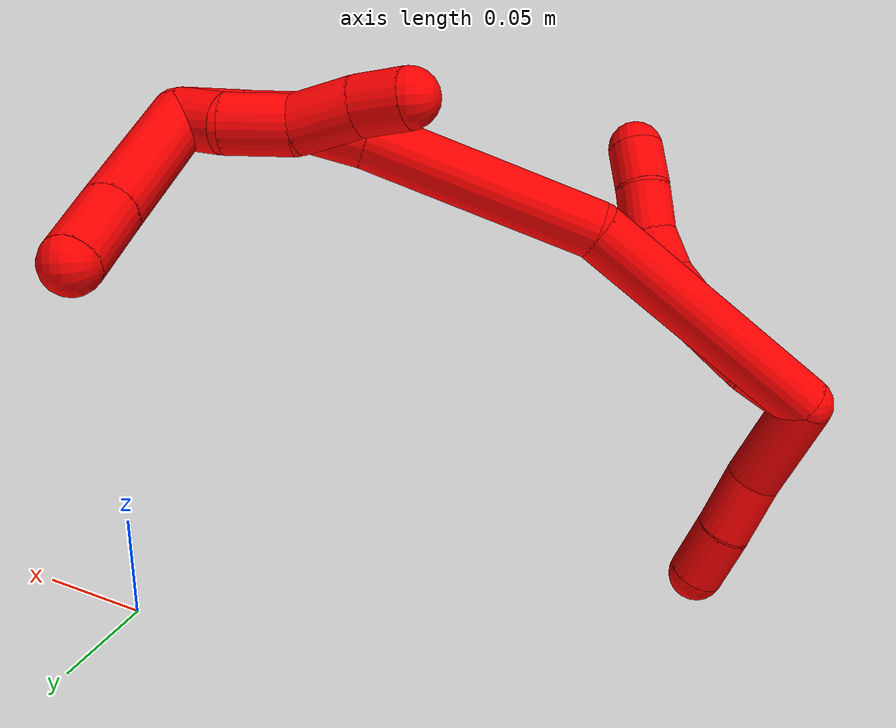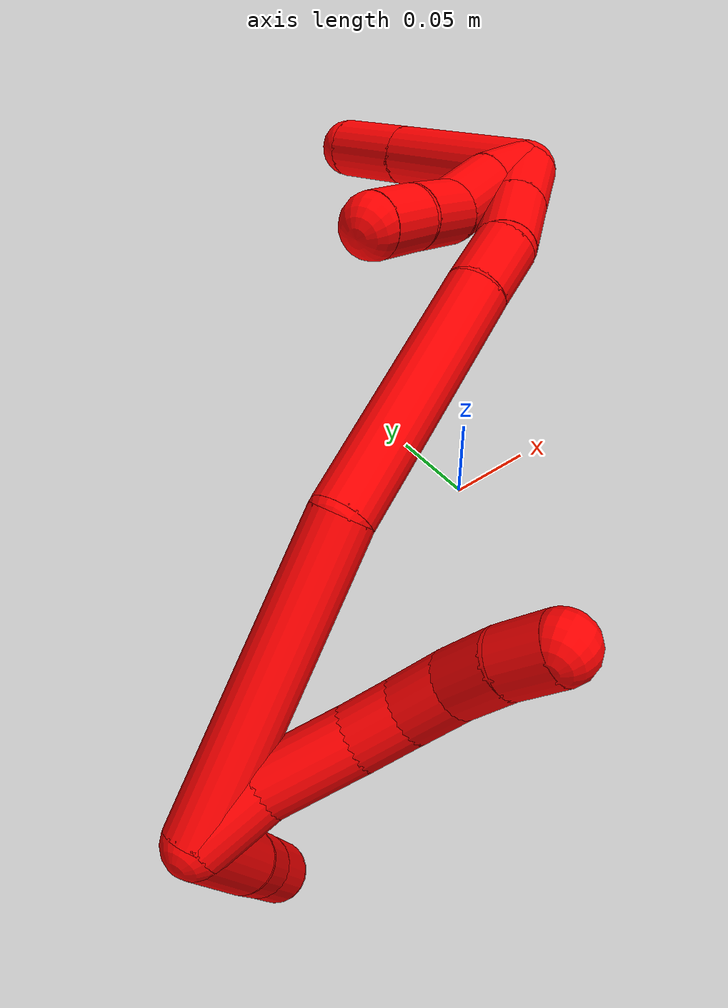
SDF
<sdf version="1.7">
 <world name="default">
  <model name="photoneo_s_sensor">
   <static>1</static>
   <pose>0 0 2 1.57079 1.57079 3.14159</pose>
   <link name="link">
    <inertial><mass>0.1</mass></inertial>
    <sensor name="sensor" type="depth">
     <update_rate>30</update_rate>
     <camera>
      <horizontal_fov>1.22</horizontal_fov>
      <image><width>1920</width><height>1200</height><format>B8G8R8</format></image>
      <clip><near>0.1</near><far>4</far></clip>
      <depth_camera><output>points</output></depth_camera>
     </camera>
     <plugin name="camera_plugin" filename="libgazebo_ros_depth_camera.so">
      <baseline>0.2</baseline>
      <alwaysOn>1</alwaysOn>
      <updateRate>0.0</updateRate>
      <cameraName>camera_ir</cameraName>
      <imageTopicName>/camera/color/image_raw</imageTopicName>
      <cameraInfoTopicName>/camera/color/camera_info</cameraInfoTopicName>
      <depthImageTopicName>/camera/depth/image_raw</depthImageTopicName>
      <depthImageCameraInfoTopicName>/camera/depth/camera_info</depthImageCameraInfoTopicName>
      <pointCloudTopicName>/camera/depth/points</pointCloudTopicName>
      <frameName>fr_optical</frameName>
      <pointCloudCutoff>0.1</pointCloudCutoff>
      <pointCloudCutoffMax>2.0</pointCloudCutoffMax>
      <distortionK1>0</distortionK1>
      <distortionK2>0</distortionK2>
      <distortionK3>0</distortionK3>
      <distortionT1>0</distortionT1>
      <distortionT2>0</distortionT2>
      <CxPrime>0</CxPrime>
      <Cx>0</Cx>
      <Cy>0</Cy>
      <focalLength>0</focalLength>
      <hackBaseline>0</hackBaseline>
     </plugin>
    </sensor>
   </link>
  </model>
  <model name="bin">
   <static>1</static>
   <link name="bottom">
    <collision name="collision-bottom">
     <pose>0 0 -0.01 0 -0 0</pose>
     <geometry><box><size>0.8 0.6 0.02</size></box></geometry>
     <surface>
      <friction><ode><mu>100</mu><mu2>100</mu2></ode></friction>
      <contact><collide_bitmask>65535</collide_bitmask></contact>
     </surface>
    </collision>
   </link>
   <link name="west_wall">
    <collision name="collision-west_wall">
     <pose>-0.41 0 0.1 0 -0 0</pose>
     <geometry><box><size>0.02 0.6 0.2</size></box></geometry>
     <surface>
      <friction><ode><mu>100</mu><mu2>100</mu2></ode></friction>
      <contact><collide_bitmask>65535</collide_bitmask></contact>
     </surface>
    </collision>
   </link>
   <link name="east_wall">
    <collision name="collision-east_wall">
     <pose>0.41 0 0.1 0 -0 0</pose>
     <geometry><box><size>0.02 0.6 0.2</size></box></geometry>
     <surface>
      <friction><ode><mu>100</mu><mu2>100</mu2></ode></friction>
      <contact><collide_bitmask>65535</collide_bitmask></contact>
     </surface>
    </collision>
   </link>
   <link name="south_wall">
    <collision name="collision-south_wall">
     <pose>0 -0.31 0.1 0 -0 0</pose>
     <geometry><box><size>0.8 0.02 0.2</size></box></geometry>
     <surface>
      <friction><ode><mu>100</mu><mu2>100</mu2></ode></friction>
      <contact><collide_bitmask>65535</collide_bitmask></contact>
     </surface>
    </collision>
   </link>
   <link name="north_wall">
    <collision name="collision-north_wall">
     <pose>0 0.31 0.1 0 -0 0</pose>
     <geometry><box><size>0.8 0.02 0.2</size></box></geometry>
     <surface>
      <friction><ode><mu>100</mu><mu2>100</mu2></ode></friction>
      <contact><collide_bitmask>65535</collide_bitmask></contact>
     </surface>
    </collision>
   </link>
  </model>
  <model name="2">
   <static>0</static>
   <link name="2">
    <collision name="collision-cylinder-e_1_2_8">
     <pose>0.008466 -0.00306 -0.011084 2.87226 0.634687 2.3591</pose>
     <geometry><cylinder><radius>0.0125</radius><length>0.028558</length></cylinder></geometry>
     <surface>
      <friction><ode><mu>1.16</mu><mu2>1.16</mu2><slip1>0</slip1><slip2>0</slip2></ode></friction>
      <contact><ode><kp>1e+06</kp><kd>1</kd><max_vel>0</max_vel><min_depth>0.001</min_depth></ode></contact>
     </surface>
    </collision>
    <visual name="visual-cylinder-e_1_2_8">
     <pose>0.008466 -0.00306 -0.011084 2.87226 0.634687 2.3591</pose>
     <geometry><cylinder><radius>0.0125</radius><length>0.028558</length></cylinder></geometry>
     <material><ambient>1 0 0 1</ambient></material>
    </visual>
    <collision name="collision-cylinder-e_2_8_9">
     <pose>0.028714 -0.013458 -0.033641 2.57252 0.713131 1.81031</pose>
     <geometry><cylinder><radius>0.0125</radius><length>0.036018</length></cylinder></geometry>
     <surface>
      <friction><ode><mu>1.16</mu><mu2>1.16</mu2><slip1>0</slip1><slip2>0</slip2></ode></friction>
      <contact><ode><kp>1e+06</kp><kd>1</kd><max_vel>0</max_vel><min_depth>0.001</min_depth></ode></contact>
     </surface>
    </collision>
    <visual name="visual-cylinder-e_2_8_9">
     <pose>0.028714 -0.013458 -0.033641 2.57252 0.713131 1.81031</pose>
     <geometry><cylinder><radius>0.0125</radius><length>0.036018</length></cylinder></geometry>
     <material><ambient>1 0 0 1</ambient></material>
    </visual>
    <collision name="collision-cylinder-e_3_9_10">
     <pose>0.048427 -0.02454 -0.050687 2.55013 0.868503 1.97914</pose>
     <geometry><cylinder><radius>0.0125</radius><length>0.020781</length></cylinder></geometry>
     <surface>
      <friction><ode><mu>1.16</mu><mu2>1.16</mu2><slip1>0</slip1><slip2>0</slip2></ode></friction>
      <contact><ode><kp>1e+06</kp><kd>1</kd><max_vel>0</max_vel><min_depth>0.001</min_depth></ode></contact>
     </surface>
    </collision>
    <visual name="visual-cylinder-e_3_9_10">
     <pose>0.048427 -0.02454 -0.050687 2.55013 0.868503 1.97914</pose>
     <geometry><cylinder><radius>0.0125</radius><length>0.020781</length></cylinder></geometry>
     <material><ambient>1 0 0 1</ambient></material>
    </visual>
    <collision name="collision-cylinder-e_4_10_11">
     <pose>0.065874 -0.031363 -0.059723 2.41479 1.11745 2.0486</pose>
     <geometry><cylinder><radius>0.0125</radius><length>0.021169</length></cylinder></geometry>
     <surface>
      <friction><ode><mu>1.16</mu><mu2>1.16</mu2><slip1>0</slip1><slip2>0</slip2></ode></friction>
      <contact><ode><kp>1e+06</kp><kd>1</kd><max_vel>0</max_vel><min_depth>0.001</min_depth></ode></contact>
     </surface>
    </collision>
    <visual name="visual-cylinder-e_4_10_11">
     <pose>0.065874 -0.031363 -0.059723 2.41479 1.11745 2.0486</pose>
     <geometry><cylinder><radius>0.0125</radius><length>0.021169</length></cylinder></geometry>
     <material><ambient>1 0 0 1</ambient></material>
    </visual>
    <collision name="collision-cylinder-e_5_11_12">
     <pose>0.086238 -0.037568 -0.064199 1.88404 1.2768 1.59097</pose>
     <geometry><cylinder><radius>0.0125</radius><length>0.022669</length></cylinder></geometry>
     <surface>
      <friction><ode><mu>1.16</mu><mu2>1.16</mu2><slip1>0</slip1><slip2>0</slip2></ode></friction>
      <contact><ode><kp>1e+06</kp><kd>1</kd><max_vel>0</max_vel><min_depth>0.001</min_depth></ode></contact>
     </surface>
    </collision>
    <visual name="visual-cylinder-e_5_11_12">
     <pose>0.086238 -0.037568 -0.064199 1.88404 1.2768 1.59097</pose>
     <geometry><cylinder><radius>0.0125</radius><length>0.022669</length></cylinder></geometry>
     <material><ambient>1 0 0 1</ambient></material>
    </visual>
    <collision name="collision-cylinder-e_6_12_6">
     <pose>0.106475 -0.044985 -0.066493 1.86088 1.12561 1.40513</pose>
     <geometry><cylinder><radius>0.0125</radius><length>0.020805</length></cylinder></geometry>
     <surface>
      <friction><ode><mu>1.16</mu><mu2>1.16</mu2><slip1>0</slip1><slip2>0</slip2></ode></friction>
      <contact><ode><kp>1e+06</kp><kd>1</kd><max_vel>0</max_vel><min_depth>0.001</min_depth></ode></contact>
     </surface>
    </collision>
    <visual name="visual-cylinder-e_6_12_6">
     <pose>0.106475 -0.044985 -0.066493 1.86088 1.12561 1.40513</pose>
     <geometry><cylinder><radius>0.0125</radius><length>0.020805</length></cylinder></geometry>
     <material><ambient>1 0 0 1</ambient></material>
    </visual>
    <collision name="collision-cylinder-e_1_2_13">
     <pose>-0.017166 -0.009365 -0.010072 2.39252 -0.895343 -1.76961</pose>
     <geometry><cylinder><radius>0.0125</radius><length>0.043993</length></cylinder></geometry>
     <surface>
      <friction><ode><mu>1.16</mu><mu2>1.16</mu2><slip1>0</slip1><slip2>0</slip2></ode></friction>
      <contact><ode><kp>1e+06</kp><kd>1</kd><max_vel>0</max_vel><min_depth>0.001</min_depth></ode></contact>
     </surface>
    </collision>
    <visual name="visual-cylinder-e_1_2_13">
     <pose>-0.017166 -0.009365 -0.010072 2.39252 -0.895343 -1.76961</pose>
     <geometry><cylinder><radius>0.0125</radius><length>0.043993</length></cylinder></geometry>
     <material><ambient>1 0 0 1</ambient></material>
    </visual>
    <collision name="collision-cylinder-e_2_13_14">
     <pose>-0.046694 -0.022829 -0.026637 2.57857 -1.01494 -2.18241</pose>
     <geometry><cylinder><radius>0.0125</radius><length>0.029104</length></cylinder></geometry>
     <surface>
      <friction><ode><mu>1.16</mu><mu2>1.16</mu2><slip1>0</slip1><slip2>0</slip2></ode></friction>
      <contact><ode><kp>1e+06</kp><kd>1</kd><max_vel>0</max_vel><min_depth>0.001</min_depth></ode></contact>
     </surface>
    </collision>
    <visual name="visual-cylinder-e_2_13_14">
     <pose>-0.046694 -0.022829 -0.026637 2.57857 -1.01494 -2.18241</pose>
     <geometry><cylinder><radius>0.0125</radius><length>0.029104</length></cylinder></geometry>
     <material><ambient>1 0 0 1</ambient></material>
    </visual>
    <collision name="collision-cylinder-e_3_14_5">
     <pose>-0.070028 -0.031766 -0.039225 2.47057 -0.95396 -1.95443</pose>
     <geometry><cylinder><radius>0.0125</radius><length>0.026903</length></cylinder></geometry>
     <surface>
      <friction><ode><mu>1.16</mu><mu2>1.16</mu2><slip1>0</slip1><slip2>0</slip2></ode></friction>
      <contact><ode><kp>1e+06</kp><kd>1</kd><max_vel>0</max_vel><min_depth>0.001</min_depth></ode></contact>
     </surface>
    </collision>
    <visual name="visual-cylinder-e_3_14_5">
     <pose>-0.070028 -0.031766 -0.039225 2.47057 -0.95396 -1.95443</pose>
     <geometry><cylinder><radius>0.0125</radius><length>0.026903</length></cylinder></geometry>
     <material><ambient>1 0 0 1</ambient></material>
    </visual>
    <collision name="collision-cylinder-e_1_2_15">
     <pose>0.038932 0.014586 -0.04383 -2.82034 0.700303 -2.30647</pose>
     <geometry><cylinder><radius>0.0125</radius><length>0.120821</length></cylinder></geometry>
     <surface>
      <friction><ode><mu>1.16</mu><mu2>1.16</mu2><slip1>0</slip1><slip2>0</slip2></ode></friction>
      <contact><ode><kp>1e+06</kp><kd>1</kd><max_vel>0</max_vel><min_depth>0.001</min_depth></ode></contact>
     </surface>
    </collision>
    <visual name="visual-cylinder-e_1_2_15">
     <pose>0.038932 0.014586 -0.04383 -2.82034 0.700303 -2.30647</pose>
     <geometry><cylinder><radius>0.0125</radius><length>0.120821</length></cylinder></geometry>
     <material><ambient>1 0 0 1</ambient></material>
    </visual>
    <collision name="collision-cylinder-e_2_15_16">
     <pose>0.098148 0.035934 -0.134046 -2.99682 0.408398 -2.46798</pose>
     <geometry><cylinder><radius>0.0125</radius><length>0.102155</length></cylinder></geometry>
     <surface>
      <friction><ode><mu>1.16</mu><mu2>1.16</mu2><slip1>0</slip1><slip2>0</slip2></ode></friction>
      <contact><ode><kp>1e+06</kp><kd>1</kd><max_vel>0</max_vel><min_depth>0.001</min_depth></ode></contact>
     </surface>
    </collision>
    <visual name="visual-cylinder-e_2_15_16">
     <pose>0.098148 0.035934 -0.134046 -2.99682 0.408398 -2.46798</pose>
     <geometry><cylinder><radius>0.0125</radius><length>0.102155</length></cylinder></geometry>
     <material><ambient>1 0 0 1</ambient></material>
    </visual>
    <collision name="collision-cylinder-e_3_16_17">
     <pose>0.122216 0.044005 -0.192268 -3.03145 0.30759 -2.45826</pose>
     <geometry><cylinder><radius>0.0125</radius><length>0.02499</length></cylinder></geometry>
     <surface>
      <friction><ode><mu>1.16</mu><mu2>1.16</mu2><slip1>0</slip1><slip2>0</slip2></ode></friction>
      <contact><ode><kp>1e+06</kp><kd>1</kd><max_vel>0</max_vel><min_depth>0.001</min_depth></ode></contact>
     </surface>
    </collision>
    <visual name="visual-cylinder-e_3_16_17">
     <pose>0.122216 0.044005 -0.192268 -3.03145 0.30759 -2.45826</pose>
     <geometry><cylinder><radius>0.0125</radius><length>0.02499</length></cylinder></geometry>
     <material><ambient>1 0 0 1</ambient></material>
    </visual>
    <collision name="collision-cylinder-e_4_17_18">
     <pose>0.126584 0.049346 -0.21693 -2.837 0.043464 -0.28135</pose>
     <geometry><cylinder><radius>0.0125</radius><length>0.026913</length></cylinder></geometry>
     <surface>
      <friction><ode><mu>1.16</mu><mu2>1.16</mu2><slip1>0</slip1><slip2>0</slip2></ode></friction>
      <contact><ode><kp>1e+06</kp><kd>1</kd><max_vel>0</max_vel><min_depth>0.001</min_depth></ode></contact>
     </surface>
    </collision>
    <visual name="visual-cylinder-e_4_17_18">
     <pose>0.126584 0.049346 -0.21693 -2.837 0.043464 -0.28135</pose>
     <geometry><cylinder><radius>0.0125</radius><length>0.026913</length></cylinder></geometry>
     <material><ambient>1 0 0 1</ambient></material>
    </visual>
    <collision name="collision-cylinder-e_5_18_1">
     <pose>0.127943 0.057049 -0.241742 -2.84446 0.061696 -0.406643</pose>
     <geometry><cylinder><radius>0.0125</radius><length>0.025121</length></cylinder></geometry>
     <surface>
      <friction><ode><mu>1.16</mu><mu2>1.16</mu2><slip1>0</slip1><slip2>0</slip2></ode></friction>
      <contact><ode><kp>1e+06</kp><kd>1</kd><max_vel>0</max_vel><min_depth>0.001</min_depth></ode></contact>
     </surface>
    </collision>
    <visual name="visual-cylinder-e_5_18_1">
     <pose>0.127943 0.057049 -0.241742 -2.84446 0.061696 -0.406643</pose>
     <geometry><cylinder><radius>0.0125</radius><length>0.025121</length></cylinder></geometry>
     <material><ambient>1 0 0 1</ambient></material>
    </visual>
    <collision name="collision-cylinder-e_1_1_19">
     <pose>0.126815 0.064763 -0.243811 -0.387136 -0.175808 0.034548</pose>
     <geometry><cylinder><radius>0.0125</radius><length>0.021756</length></cylinder></geometry>
     <surface>
      <friction><ode><mu>1.16</mu><mu2>1.16</mu2><slip1>0</slip1><slip2>0</slip2></ode></friction>
      <contact><ode><kp>1e+06</kp><kd>1</kd><max_vel>0</max_vel><min_depth>0.001</min_depth></ode></contact>
     </surface>
    </collision>
    <visual name="visual-cylinder-e_1_1_19">
     <pose>0.126815 0.064763 -0.243811 -0.387136 -0.175808 0.034548</pose>
     <geometry><cylinder><radius>0.0125</radius><length>0.021756</length></cylinder></geometry>
     <material><ambient>1 0 0 1</ambient></material>
    </visual>
    <collision name="collision-cylinder-e_2_19_20">
     <pose>0.123893 0.070022 -0.219285 -0.083041 -0.069422 0.002885</pose>
     <geometry><cylinder><radius>0.0125</radius><length>0.029389</length></cylinder></geometry>
     <surface>
      <friction><ode><mu>1.16</mu><mu2>1.16</mu2><slip1>0</slip1><slip2>0</slip2></ode></friction>
      <contact><ode><kp>1e+06</kp><kd>1</kd><max_vel>0</max_vel><min_depth>0.001</min_depth></ode></contact>
     </surface>
    </collision>
    <visual name="visual-cylinder-e_2_19_20">
     <pose>0.123893 0.070022 -0.219285 -0.083041 -0.069422 0.002885</pose>
     <geometry><cylinder><radius>0.0125</radius><length>0.029389</length></cylinder></geometry>
     <material><ambient>1 0 0 1</ambient></material>
    </visual>
    <collision name="collision-cylinder-e_3_20_21">
     <pose>0.125705 0.074296 -0.191617 -0.230042 0.208054 -0.024123</pose>
     <geometry><cylinder><radius>0.0125</radius><length>0.027416</length></cylinder></geometry>
     <surface>
      <friction><ode><mu>1.16</mu><mu2>1.16</mu2><slip1>0</slip1><slip2>0</slip2></ode></friction>
      <contact><ode><kp>1e+06</kp><kd>1</kd><max_vel>0</max_vel><min_depth>0.001</min_depth></ode></contact>
     </surface>
    </collision>
    <visual name="visual-cylinder-e_3_20_21">
     <pose>0.125705 0.074296 -0.191617 -0.230042 0.208054 -0.024123</pose>
     <geometry><cylinder><radius>0.0125</radius><length>0.027416</length></cylinder></geometry>
     <material><ambient>1 0 0 1</ambient></material>
    </visual>
    <collision name="collision-cylinder-e_4_21_4">
     <pose>0.1293 0.080557 -0.168357 -0.304173 0.071285 -0.01093</pose>
     <geometry><cylinder><radius>0.0125</radius><length>0.021439</length></cylinder></geometry>
     <surface>
      <friction><ode><mu>1.16</mu><mu2>1.16</mu2><slip1>0</slip1><slip2>0</slip2></ode></friction>
      <contact><ode><kp>1e+06</kp><kd>1</kd><max_vel>0</max_vel><min_depth>0.001</min_depth></ode></contact>
     </surface>
    </collision>
    <visual name="visual-cylinder-e_4_21_4">
     <pose>0.1293 0.080557 -0.168357 -0.304173 0.071285 -0.01093</pose>
     <geometry><cylinder><radius>0.0125</radius><length>0.021439</length></cylinder></geometry>
     <material><ambient>1 0 0 1</ambient></material>
    </visual>
    <collision name="collision-cylinder-e_1_1_22">
     <pose>0.109684 0.087001 -0.26128 -1.85058 -0.608067 0.789474</pose>
     <geometry><cylinder><radius>0.0125</radius><length>0.066635</length></cylinder></geometry>
     <surface>
      <friction><ode><mu>1.16</mu><mu2>1.16</mu2><slip1>0</slip1><slip2>0</slip2></ode></friction>
      <contact><ode><kp>1e+06</kp><kd>1</kd><max_vel>0</max_vel><min_depth>0.001</min_depth></ode></contact>
     </surface>
    </collision>
    <visual name="visual-cylinder-e_1_1_22">
     <pose>0.109684 0.087001 -0.26128 -1.85058 -0.608067 0.789474</pose>
     <geometry><cylinder><radius>0.0125</radius><length>0.066635</length></cylinder></geometry>
     <material><ambient>1 0 0 1</ambient></material>
    </visual>
    <collision name="collision-cylinder-e_2_22_3">
     <pose>0.081148 0.12654 -0.272334 -1.82909 -0.606018 0.771267</pose>
     <geometry><cylinder><radius>0.0125</radius><length>0.033365</length></cylinder></geometry>
     <surface>
      <friction><ode><mu>1.16</mu><mu2>1.16</mu2><slip1>0</slip1><slip2>0</slip2></ode></friction>
      <contact><ode><kp>1e+06</kp><kd>1</kd><max_vel>0</max_vel><min_depth>0.001</min_depth></ode></contact>
     </surface>
    </collision>
    <visual name="visual-cylinder-e_2_22_3">
     <pose>0.081148 0.12654 -0.272334 -1.82909 -0.606018 0.771267</pose>
     <geometry><cylinder><radius>0.0125</radius><length>0.033365</length></cylinder></geometry>
     <material><ambient>1 0 0 1</ambient></material>
    </visual>
    <collision name="collision-sphere-3">
     <pose>0.071645 0.139797 -0.275836 0 -0 0</pose>
     <geometry><sphere><radius>0.0125</radius></sphere></geometry>
     <surface>
      <friction><ode><mu>1.16</mu><mu2>1.16</mu2><slip1>0</slip1><slip2>0</slip2></ode></friction>
      <contact><ode><kp>1e+06</kp><kd>1</kd><max_vel>0</max_vel><min_depth>0.001</min_depth></ode></contact>
     </surface>
    </collision>
    <visual name="visual-sphere-3">
     <pose>0.071645 0.139797 -0.275836 0 -0 0</pose>
     <geometry><sphere><radius>0.0125</radius></sphere></geometry>
     <material><ambient>1 0 0 1</ambient></material>
    </visual>
    <collision name="collision-sphere-22">
     <pose>0.09065 0.113283 -0.268831 0 -0 0</pose>
     <geometry><sphere><radius>0.0125</radius></sphere></geometry>
     <surface>
      <friction><ode><mu>1.16</mu><mu2>1.16</mu2><slip1>0</slip1><slip2>0</slip2></ode></friction>
      <contact><ode><kp>1e+06</kp><kd>1</kd><max_vel>0</max_vel><min_depth>0.001</min_depth></ode></contact>
     </surface>
    </collision>
    <visual name="visual-sphere-22">
     <pose>0.09065 0.113283 -0.268831 0 -0 0</pose>
     <geometry><sphere><radius>0.0125</radius></sphere></geometry>
     <material><ambient>1 0 0 1</ambient></material>
    </visual>
    <collision name="collision-sphere-4">
     <pose>0.130063 0.083759 -0.158155 0 -0 0</pose>
     <geometry><sphere><radius>0.0125</radius></sphere></geometry>
     <surface>
      <friction><ode><mu>1.16</mu><mu2>1.16</mu2><slip1>0</slip1><slip2>0</slip2></ode></friction>
      <contact><ode><kp>1e+06</kp><kd>1</kd><max_vel>0</max_vel><min_depth>0.001</min_depth></ode></contact>
     </surface>
    </collision>
    <visual name="visual-sphere-4">
     <pose>0.130063 0.083759 -0.158155 0 -0 0</pose>
     <geometry><sphere><radius>0.0125</radius></sphere></geometry>
     <material><ambient>1 0 0 1</ambient></material>
    </visual>
    <collision name="collision-sphere-21">
     <pose>0.128536 0.077354 -0.178558 0 -0 0</pose>
     <geometry><sphere><radius>0.0125</radius></sphere></geometry>
     <surface>
      <friction><ode><mu>1.16</mu><mu2>1.16</mu2><slip1>0</slip1><slip2>0</slip2></ode></friction>
      <contact><ode><kp>1e+06</kp><kd>1</kd><max_vel>0</max_vel><min_depth>0.001</min_depth></ode></contact>
     </surface>
    </collision>
    <visual name="visual-sphere-21">
     <pose>0.128536 0.077354 -0.178558 0 -0 0</pose>
     <geometry><sphere><radius>0.0125</radius></sphere></geometry>
     <material><ambient>1 0 0 1</ambient></material>
    </visual>
    <collision name="collision-sphere-20">
     <pose>0.122873 0.071238 -0.204676 0 -0 0</pose>
     <geometry><sphere><radius>0.0125</radius></sphere></geometry>
     <surface>
      <friction><ode><mu>1.16</mu><mu2>1.16</mu2><slip1>0</slip1><slip2>0</slip2></ode></friction>
      <contact><ode><kp>1e+06</kp><kd>1</kd><max_vel>0</max_vel><min_depth>0.001</min_depth></ode></contact>
     </surface>
    </collision>
    <visual name="visual-sphere-20">
     <pose>0.122873 0.071238 -0.204676 0 -0 0</pose>
     <geometry><sphere><radius>0.0125</radius></sphere></geometry>
     <material><ambient>1 0 0 1</ambient></material>
    </visual>
    <collision name="collision-sphere-12">
     <pose>0.097086 -0.040693 -0.065211 0 -0 0</pose>
     <geometry><sphere><radius>0.0125</radius></sphere></geometry>
     <surface>
      <friction><ode><mu>1.16</mu><mu2>1.16</mu2><slip1>0</slip1><slip2>0</slip2></ode></friction>
      <contact><ode><kp>1e+06</kp><kd>1</kd><max_vel>0</max_vel><min_depth>0.001</min_depth></ode></contact>
     </surface>
    </collision>
    <visual name="visual-sphere-12">
     <pose>0.097086 -0.040693 -0.065211 0 -0 0</pose>
     <geometry><sphere><radius>0.0125</radius></sphere></geometry>
     <material><ambient>1 0 0 1</ambient></material>
    </visual>
    <collision name="collision-sphere-11">
     <pose>0.07539 -0.034443 -0.063187 0 -0 0</pose>
     <geometry><sphere><radius>0.0125</radius></sphere></geometry>
     <surface>
      <friction><ode><mu>1.16</mu><mu2>1.16</mu2><slip1>0</slip1><slip2>0</slip2></ode></friction>
      <contact><ode><kp>1e+06</kp><kd>1</kd><max_vel>0</max_vel><min_depth>0.001</min_depth></ode></contact>
     </surface>
    </collision>
    <visual name="visual-sphere-11">
     <pose>0.07539 -0.034443 -0.063187 0 -0 0</pose>
     <geometry><sphere><radius>0.0125</radius></sphere></geometry>
     <material><ambient>1 0 0 1</ambient></material>
    </visual>
    <collision name="collision-sphere-10">
     <pose>0.056359 -0.028283 -0.056258 0 -0 0</pose>
     <geometry><sphere><radius>0.0125</radius></sphere></geometry>
     <surface>
      <friction><ode><mu>1.16</mu><mu2>1.16</mu2><slip1>0</slip1><slip2>0</slip2></ode></friction>
      <contact><ode><kp>1e+06</kp><kd>1</kd><max_vel>0</max_vel><min_depth>0.001</min_depth></ode></contact>
     </surface>
    </collision>
    <visual name="visual-sphere-10">
     <pose>0.056359 -0.028283 -0.056258 0 -0 0</pose>
     <geometry><sphere><radius>0.0125</radius></sphere></geometry>
     <material><ambient>1 0 0 1</ambient></material>
    </visual>
    <collision name="collision-sphere-9">
     <pose>0.040496 -0.020798 -0.045115 0 -0 0</pose>
     <geometry><sphere><radius>0.0125</radius></sphere></geometry>
     <surface>
      <friction><ode><mu>1.16</mu><mu2>1.16</mu2><slip1>0</slip1><slip2>0</slip2></ode></friction>
      <contact><ode><kp>1e+06</kp><kd>1</kd><max_vel>0</max_vel><min_depth>0.001</min_depth></ode></contact>
     </surface>
    </collision>
    <visual name="visual-sphere-9">
     <pose>0.040496 -0.020798 -0.045115 0 -0 0</pose>
     <geometry><sphere><radius>0.0125</radius></sphere></geometry>
     <material><ambient>1 0 0 1</ambient></material>
    </visual>
    <collision name="collision-sphere-2">
     <geometry><sphere><radius>0.0125</radius></sphere></geometry>
     <surface>
      <friction><ode><mu>1.16</mu><mu2>1.16</mu2><slip1>0</slip1><slip2>0</slip2></ode></friction>
      <contact><ode><kp>1e+06</kp><kd>1</kd><max_vel>0</max_vel><min_depth>0.001</min_depth></ode></contact>
     </surface>
    </collision>
    <visual name="visual-sphere-2">
     <geometry><sphere><radius>0.0125</radius></sphere></geometry>
     <material><ambient>1 0 0 1</ambient></material>
    </visual>
    <collision name="collision-sphere-19">
     <pose>0.124912 0.068806 -0.233894 0 -0 0</pose>
     <geometry><sphere><radius>0.0125</radius></sphere></geometry>
     <surface>
      <friction><ode><mu>1.16</mu><mu2>1.16</mu2><slip1>0</slip1><slip2>0</slip2></ode></friction>
      <contact><ode><kp>1e+06</kp><kd>1</kd><max_vel>0</max_vel><min_depth>0.001</min_depth></ode></contact>
     </surface>
    </collision>
    <visual name="visual-sphere-19">
     <pose>0.124912 0.068806 -0.233894 0 -0 0</pose>
     <geometry><sphere><radius>0.0125</radius></sphere></geometry>
     <material><ambient>1 0 0 1</ambient></material>
    </visual>
    <collision name="collision-sphere-8">
     <pose>0.016933 -0.006119 -0.022167 0 -0 0</pose>
     <geometry><sphere><radius>0.0125</radius></sphere></geometry>
     <surface>
      <friction><ode><mu>1.16</mu><mu2>1.16</mu2><slip1>0</slip1><slip2>0</slip2></ode></friction>
      <contact><ode><kp>1e+06</kp><kd>1</kd><max_vel>0</max_vel><min_depth>0.001</min_depth></ode></contact>
     </surface>
    </collision>
    <visual name="visual-sphere-8">
     <pose>0.016933 -0.006119 -0.022167 0 -0 0</pose>
     <geometry><sphere><radius>0.0125</radius></sphere></geometry>
     <material><ambient>1 0 0 1</ambient></material>
    </visual>
    <collision name="collision-sphere-6">
     <pose>0.115864 -0.049278 -0.067774 0 -0 0</pose>
     <geometry><sphere><radius>0.0125</radius></sphere></geometry>
     <surface>
      <friction><ode><mu>1.16</mu><mu2>1.16</mu2><slip1>0</slip1><slip2>0</slip2></ode></friction>
      <contact><ode><kp>1e+06</kp><kd>1</kd><max_vel>0</max_vel><min_depth>0.001</min_depth></ode></contact>
     </surface>
    </collision>
    <visual name="visual-sphere-6">
     <pose>0.115864 -0.049278 -0.067774 0 -0 0</pose>
     <geometry><sphere><radius>0.0125</radius></sphere></geometry>
     <material><ambient>1 0 0 1</ambient></material>
    </visual>
    <collision name="collision-sphere-13">
     <pose>-0.034333 -0.018731 -0.020144 0 -0 0</pose>
     <geometry><sphere><radius>0.0125</radius></sphere></geometry>
     <surface>
      <friction><ode><mu>1.16</mu><mu2>1.16</mu2><slip1>0</slip1><slip2>0</slip2></ode></friction>
      <contact><ode><kp>1e+06</kp><kd>1</kd><max_vel>0</max_vel><min_depth>0.001</min_depth></ode></contact>
     </surface>
    </collision>
    <visual name="visual-sphere-13">
     <pose>-0.034333 -0.018731 -0.020144 0 -0 0</pose>
     <geometry><sphere><radius>0.0125</radius></sphere></geometry>
     <material><ambient>1 0 0 1</ambient></material>
    </visual>
    <collision name="collision-sphere-14">
     <pose>-0.059055 -0.026928 -0.033131 0 -0 0</pose>
     <geometry><sphere><radius>0.0125</radius></sphere></geometry>
     <surface>
      <friction><ode><mu>1.16</mu><mu2>1.16</mu2><slip1>0</slip1><slip2>0</slip2></ode></friction>
      <contact><ode><kp>1e+06</kp><kd>1</kd><max_vel>0</max_vel><min_depth>0.001</min_depth></ode></contact>
     </surface>
    </collision>
    <visual name="visual-sphere-14">
     <pose>-0.059055 -0.026928 -0.033131 0 -0 0</pose>
     <geometry><sphere><radius>0.0125</radius></sphere></geometry>
     <material><ambient>1 0 0 1</ambient></material>
    </visual>
    <collision name="collision-sphere-5">
     <pose>-0.081001 -0.036604 -0.045319 0 -0 0</pose>
     <geometry><sphere><radius>0.0125</radius></sphere></geometry>
     <surface>
      <friction><ode><mu>1.16</mu><mu2>1.16</mu2><slip1>0</slip1><slip2>0</slip2></ode></friction>
      <contact><ode><kp>1e+06</kp><kd>1</kd><max_vel>0</max_vel><min_depth>0.001</min_depth></ode></contact>
     </surface>
    </collision>
    <visual name="visual-sphere-5">
     <pose>-0.081001 -0.036604 -0.045319 0 -0 0</pose>
     <geometry><sphere><radius>0.0125</radius></sphere></geometry>
     <material><ambient>1 0 0 1</ambient></material>
    </visual>
    <collision name="collision-sphere-15">
     <pose>0.077863 0.029171 -0.087659 0 -0 0</pose>
     <geometry><sphere><radius>0.0125</radius></sphere></geometry>
     <surface>
      <friction><ode><mu>1.16</mu><mu2>1.16</mu2><slip1>0</slip1><slip2>0</slip2></ode></friction>
      <contact><ode><kp>1e+06</kp><kd>1</kd><max_vel>0</max_vel><min_depth>0.001</min_depth></ode></contact>
     </surface>
    </collision>
    <visual name="visual-sphere-15">
     <pose>0.077863 0.029171 -0.087659 0 -0 0</pose>
     <geometry><sphere><radius>0.0125</radius></sphere></geometry>
     <material><ambient>1 0 0 1</ambient></material>
    </visual>
    <collision name="collision-sphere-16">
     <pose>0.118433 0.042696 -0.180432 0 -0 0</pose>
     <geometry><sphere><radius>0.0125</radius></sphere></geometry>
     <surface>
      <friction><ode><mu>1.16</mu><mu2>1.16</mu2><slip1>0</slip1><slip2>0</slip2></ode></friction>
      <contact><ode><kp>1e+06</kp><kd>1</kd><max_vel>0</max_vel><min_depth>0.001</min_depth></ode></contact>
     </surface>
    </collision>
    <visual name="visual-sphere-16">
     <pose>0.118433 0.042696 -0.180432 0 -0 0</pose>
     <geometry><sphere><radius>0.0125</radius></sphere></geometry>
     <material><ambient>1 0 0 1</ambient></material>
    </visual>
    <collision name="collision-sphere-17">
     <pose>0.125999 0.045314 -0.204105 0 -0 0</pose>
     <geometry><sphere><radius>0.0125</radius></sphere></geometry>
     <surface>
      <friction><ode><mu>1.16</mu><mu2>1.16</mu2><slip1>0</slip1><slip2>0</slip2></ode></friction>
      <contact><ode><kp>1e+06</kp><kd>1</kd><max_vel>0</max_vel><min_depth>0.001</min_depth></ode></contact>
     </surface>
    </collision>
    <visual name="visual-sphere-17">
     <pose>0.125999 0.045314 -0.204105 0 -0 0</pose>
     <geometry><sphere><radius>0.0125</radius></sphere></geometry>
     <material><ambient>1 0 0 1</ambient></material>
    </visual>
    <collision name="collision-sphere-18">
     <pose>0.127168 0.053378 -0.229755 0 -0 0</pose>
     <geometry><sphere><radius>0.0125</radius></sphere></geometry>
     <surface>
      <friction><ode><mu>1.16</mu><mu2>1.16</mu2><slip1>0</slip1><slip2>0</slip2></ode></friction>
      <contact><ode><kp>1e+06</kp><kd>1</kd><max_vel>0</max_vel><min_depth>0.001</min_depth></ode></contact>
     </surface>
    </collision>
    <visual name="visual-sphere-18">
     <pose>0.127168 0.053378 -0.229755 0 -0 0</pose>
     <geometry><sphere><radius>0.0125</radius></sphere></geometry>
     <material><ambient>1 0 0 1</ambient></material>
    </visual>
    <collision name="collision-sphere-1">
     <pose>0.128717 0.060719 -0.253729 0 -0 0</pose>
     <geometry><sphere><radius>0.0125</radius></sphere></geometry>
     <surface>
      <friction><ode><mu>1.16</mu><mu2>1.16</mu2><slip1>0</slip1><slip2>0</slip2></ode></friction>
      <contact><ode><kp>1e+06</kp><kd>1</kd><max_vel>0</max_vel><min_depth>0.001</min_depth></ode></contact>
     </surface>
    </collision>
    <visual name="visual-sphere-1">
     <pose>0.128717 0.060719 -0.253729 0 -0 0</pose>
     <geometry><sphere><radius>0.0125</radius></sphere></geometry>
     <material><ambient>1 0 0 1</ambient></material>
    </visual>
    <inertial>
     <pose>0.067851 0.028106 -0.122362 0 -0 0</pose>
     <mass>0.75</mass>
     <inertia>
      <ixx>-0.000235</ixx>
      <ixy>0</ixy>
      <ixz>0</ixz>
      <iyy>0.000111</iyy>
      <iyz>0</iyz>
      <izz>-0.000207</izz>
     </inertia>
    </inertial>
   </link>
   <pose>-0.255025 -0.150099 0.103483 1.39205 -1.14259 -0.989199</pose>
  </model>
 </world>
</sdf>
